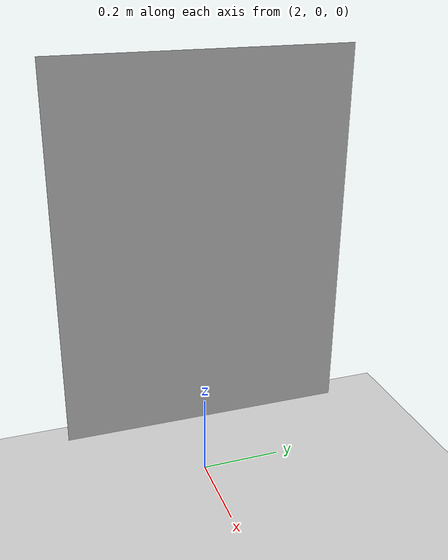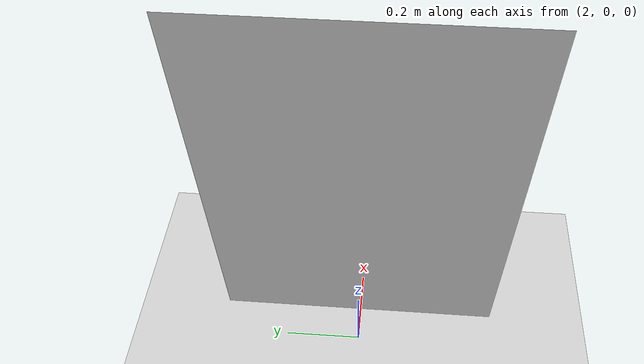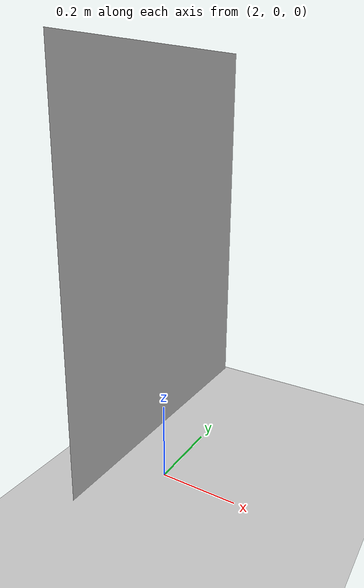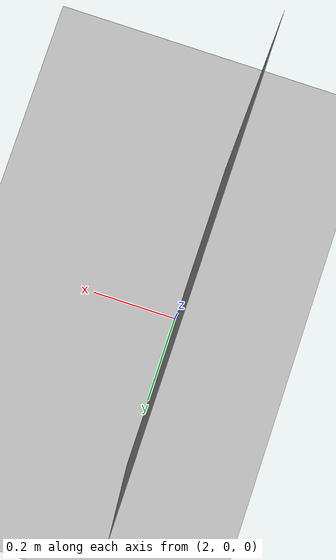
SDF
<?xml version="1.0" ?>
<sdf version="1.5">
  <world name="default">
    <scene>
      <sky>
        <clouds>
          <speed>12</speed>
        </clouds>
      </sky>
    </scene>
    <!-- A global light source -->
    <include>
      <uri>model://sun</uri>
    </include>
    <!-- A ground plane -->
    <include>
      <uri>model://ground_plane</uri>
    </include>
    <include>
      <uri>model://handeyeboard</uri>
    </include>
  </world>
</sdf>

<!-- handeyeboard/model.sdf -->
<sdf version="1.6">
<model name="handeyeboard">
  <pose>2 0 0.6 0 0 3.14</pose>
  <static>true</static>
    <link name="handeyeboard_link">
      <visual name="visual">
        <geometry>
          <mesh>
            <uri>model://handeyeboard/meshes/handeyeboard.dae</uri>
          </mesh>
        </geometry>
      </visual>
    </link>
  </model>
</sdf>
